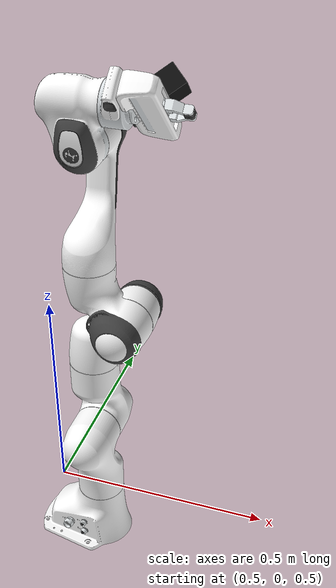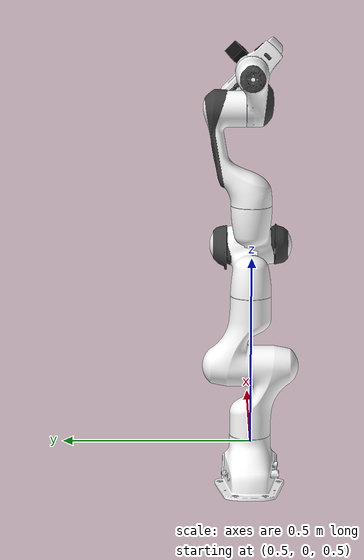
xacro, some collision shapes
<?xml version="1.0"?>
<robot name="panda" xmlns:xacro="http://www.ros.org/wiki/xacro">

  <xacro:include filename="$(find panda_description)/urdf/materials.xacro" />
  <xacro:include filename="$(find panda_description)/urdf/arm.xacro" />
  <xacro:include filename="$(find panda_description)/urdf/sensors.xacro" />
  <xacro:include filename="$(find panda_description)/urdf/gazebo.xacro" />
  <xacro:include filename="$(find panda_description)/urdf/ros2control.xacro" />
  <xacro:base_camera parent_link="panda_hand"/>

</robot>

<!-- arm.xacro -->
<robot name="panda" xmlns:xacro="http://www.ros.org/wiki/xacro">

  <!-- World Frame -->
  <link name="world"/>
  <link name  ="tcp_link"/>

  <!-- Link 0 - Base -->
  <link name="panda_link0">
    <visual>
      <geometry>
        <mesh filename="package://panda_description/meshes/visual/link0.dae"/>
      </geometry>
    </visual>
    <collision>
      <geometry>
        <mesh filename="package://panda_description/meshes/collision/link0.obj"/>
      </geometry>
    </collision>
      <inertial>
          <origin xyz="0 0 0" rpy="0.0 0.0 0.0"/>
          <mass value="0.1"/>
          <inertia ixx="0.1" ixy="0.0" ixz="0.0" iyy="0.1" iyz="0.0" izz="0.1"/>
      </inertial>
  </link>

  <!-- World-Base Joint  rpy="0 0 1.57 -->
  <joint name="virtual_joint" type="fixed">
    <parent link="world"/>
    <child link="panda_link0"/>
    <origin xyz="0.6 0 0.35" rpy="0 0 0"/>
  </joint>

  <!-- Link 1 -->
  <link name="panda_link1">
    <visual>
      <geometry>
        <mesh filename="package://panda_description/meshes/visual/link1.dae"/>
      </geometry>
    </visual>
    <collision>
      <geometry>
        <mesh filename="package://panda_description/meshes/collision/link1.obj"/>
      </geometry>
    </collision>
        <inertial>
            <origin xyz="0 0 0" rpy="0.0 0.0 0.0"/>
            <mass value="0.1"/>
            <inertia ixx="0.1" ixy="0.0" ixz="0.0" iyy="0.1" iyz="0.0" izz="0.1"/>
        </inertial>
  </link>

  <!-- Joint 1 -->
  <joint name="panda_joint1" type="revolute">
    <safety_controller k_position="100.0" k_velocity="40.0" soft_lower_limit="-2.8973" soft_upper_limit="2.8973"/>
    <origin rpy="0 0 0" xyz="0 0 0.333"/>
    <parent link="panda_link0"/>
    <child link="panda_link1"/>
    <axis xyz="0 0 1"/>
    <limit effort="30.0" lower="-2.9671" upper="2.9671" velocity="10.0"/>
  </joint>

  <!-- Link 2 -->
  <link name="panda_link2">
    <visual>
      <geometry>
        <mesh filename="package://panda_description/meshes/visual/link2.dae"/>
      </geometry>
    </visual>
    <collision>
      <geometry>
        <mesh filename="package://panda_description/meshes/collision/link2.obj"/>
      </geometry>
    </collision>
        <inertial>
          <origin xyz="0 0 0" rpy="0.0 0.0 0.0"/>
          <mass value="0.1"/>
          <inertia ixx="0.1" ixy="0.0" ixz="0.0" iyy="0.1" iyz="0.0" izz="0.1"/>
      </inertial>
  </link>

  <!-- Joint 2 -->
  <joint name="panda_joint2" type="revolute">
    <safety_controller k_position="100.0" k_velocity="40.0" soft_lower_limit="-1.7628" soft_upper_limit="1.7628"/>
    <origin rpy="-1.57079632679 0 0" xyz="0 0 0"/>
    <parent link="panda_link1"/>
    <child link="panda_link2"/>
    <axis xyz="0 0 1"/>
    <limit effort="30.0" lower="-1.8326" upper="1.8326" velocity="10.0"/>
  </joint>

  <!-- Link 3 -->
  <link name="panda_link3">
    <visual>
      <geometry>
        <mesh filename="package://panda_description/meshes/visual/link3.dae"/>
      </geometry>
    </visual>
    <collision>
      <geometry>
        <mesh filename="package://panda_description/meshes/collision/link3.obj"/>
      </geometry>
    </collision>
      <inertial>
          <origin xyz="0 0 0" rpy="0.0 0.0 0.0"/>
          <mass value="0.1"/>
          <inertia ixx="0.1" ixy="0.0" ixz="0.0" iyy="0.1" iyz="0.0" izz="0.1"/>
      </inertial>
  </link>

  <!-- Joint 3 -->
  <joint name="panda_joint3" type="revolute">
    <safety_controller k_position="100.0" k_velocity="40.0" soft_lower_limit="-2.8973" soft_upper_limit="2.8973"/>
    <origin rpy="1.57079632679 0 0" xyz="0 -0.316 0"/>
    <parent link="panda_link2"/>
    <child link="panda_link3"/>
    <axis xyz="0 0 1"/>
    <limit effort="30.0" lower="-2.9671" upper="2.9671" velocity="10.0"/>
  </joint>

  <!-- Link 4 -->
  <link name="panda_link4">
    <visual>
      <geometry>
        <mesh filename="package://panda_description/meshes/visual/link4.dae"/>
      </geometry>
    </visual>
    <collision>
      <geometry>
        <mesh filename="package://panda_description/meshes/collision/link4.obj"/>
      </geometry>
    </collision>
      <inertial>
          <origin xyz="0 0 0" rpy="0.0 0.0 0.0"/>
          <mass value="0.1"/>
          <inertia ixx="0.1" ixy="0.0" ixz="0.0" iyy="0.1" iyz="0.0" izz="0.1"/>
      </inertial>
  </link>

  <!-- Joint 4 -->
  <joint name="panda_joint4" type="revolute">
    <safety_controller k_position="100.0" k_velocity="40.0" soft_lower_limit="-3.0718" soft_upper_limit="-0.0698"/>
    <origin rpy="1.57079632679 0 0" xyz="0.0825 0 0"/>
    <parent link="panda_link3"/>
    <child link="panda_link4"/>
    <axis xyz="0 0 1"/>
    <limit effort="30.0" lower="-3.1416" upper="0.0" velocity="10.0"/>
  </joint>

  <!-- Link 5 -->
  <link name="panda_link5">
    <visual>
      <geometry>
        <mesh filename="package://panda_description/meshes/visual/link5.dae"/>
      </geometry>
    </visual>
    <collision>
      <geometry>
        <mesh filename="package://panda_description/meshes/collision/link5.obj"/>
      </geometry>
    </collision>
      <inertial>
          <origin xyz="0 0 0" rpy="0.0 0.0 0.0"/>
          <mass value="0.1"/>
          <inertia ixx="0.1" ixy="0.0" ixz="0.0" iyy="0.1" iyz="0.0" izz="0.1"/>
      </inertial>
  </link>

  <!-- Joint 5 -->
  <joint name="panda_joint5" type="revolute">
    <safety_controller k_position="100.0" k_velocity="40.0" soft_lower_limit="-2.8973" soft_upper_limit="2.8973"/>
    <origin rpy="-1.57079632679 0 0" xyz="-0.0825 0.384 0"/>
    <parent link="panda_link4"/>
    <child link="panda_link5"/>
    <axis xyz="0 0 1"/>
    <limit effort="30.0" lower="-2.9671" upper="2.9671" velocity="10.0"/>
  </joint>

  <!-- Link 6 -->
  <link name="panda_link6">
    <visual>
      <geometry>
        <mesh filename="package://panda_description/meshes/visual/link6.dae"/>
      </geometry>
    </visual>
    <collision>
      <geometry>
        <mesh filename="package://panda_description/meshes/collision/link6.obj"/>
      </geometry>
    </collision>
      <inertial>
          <origin xyz="0 0 0" rpy="0.0 0.0 0.0"/>
          <mass value="0.1"/>
          <inertia ixx="0.1" ixy="0.0" ixz="0.0" iyy="0.1" iyz="0.0" izz="0.1"/>
      </inertial>
  </link>

  <!-- Joint 6 45 deg = 57079632679-->
  <joint name="panda_joint6" type="revolute">
    <safety_controller k_position="100.0" k_velocity="40.0" soft_lower_limit="-1.57079632679" soft_upper_limit="3.141562"/>
    <origin rpy="1.57079632679 -1.57079632679 0 " xyz="0 0 0"/>
    <parent link="panda_link5"/>
    <child link="panda_link6"/>
    <axis xyz="0 0 1"/>
    <limit effort="30.0" lower="-1.1873" upper="3.8223" velocity="10.0"/>
  </joint>

  <!-- Link 7 -->
  <link name="panda_link7">
    <visual>
      <geometry>
        <mesh filename="package://panda_description/meshes/visual/link7.dae"/>
      </geometry>
    </visual>
    <collision>
      <geometry>
        <mesh filename="package://panda_description/meshes/collision/link7.obj"/>
      </geometry>
    </collision>
      <inertial>
          <origin xyz="0 0 0" rpy="0.0 0.0 0.0"/>
          <mass value="0.1"/>
          <inertia ixx="0.1" ixy="0.0" ixz="0.0" iyy="0.1" iyz="0.0" izz="0.1"/>
      </inertial>
  </link>

  <!-- Joint 7 -->
  <joint name="panda_joint7" type="revolute">
    <safety_controller k_position="100.0" k_velocity="40.0" soft_lower_limit="-2.8973" soft_upper_limit="2.8973"/>
    <origin rpy="1.57079632679 0 0" xyz="0.088 0 0"/>
    <parent link="panda_link6"/>
    <child link="panda_link7"/>
    <axis xyz="0 0 1"/>
    <limit effort="30.0" lower="-2.9671" upper="2.9671" velocity="10.0"/>
  </joint>
  <!-- tcp_joint -->
    <joint    name  ="tcp_joint"             type      ="fixed">
    <origin xyz   ="0 0 0.08"              rpy       ="0 0 0"/>
    <parent link  ="panda_hand"/>
    <child  link  ="tcp_link"/>
  </joint>

  <!-- Hand Link -->
  <link name="panda_hand">
    <visual>
      <geometry>
        <mesh filename="package://panda_description/meshes/visual/hand.dae"/>
      </geometry>
    </visual>
    <collision>
      <geometry>
        <mesh filename="package://panda_description/meshes/collision/hand.obj"/>
      </geometry>
    </collision>
      <inertial>
          <origin xyz="0 0 0" rpy="0.0 0.0 0.0"/>
          <mass value="0.1"/>
          <inertia ixx="0.1" ixy="0.0" ixz="0.0" iyy="0.1" iyz="0.0" izz="0.1"/>
      </inertial>
  </link>

  <!-- Hand Joint rpy="0 0 -0.785398163397 -->
  <joint name="panda_hand_joint" type="fixed">
    <parent link="panda_link7"/>
    <child link="panda_hand"/>
    <origin rpy="0 0 -0.785398163397" xyz="0 0 0.106"/>
  </joint>

  <!-- Left Finger Link -->
  <link name="panda_leftfinger">
    <visual>
      <geometry>
        <mesh filename="package://panda_description/meshes/visual/finger.dae"/>
      </geometry>
    </visual>
    <collision>
      <geometry>
        <mesh filename="package://panda_description/meshes/collision/finger.obj"/>
      </geometry>
    </collision>
      <inertial>
          <origin xyz="0 0 0" rpy="0.0 0.0 0.0"/>
          <mass value="0.1"/>
          <inertia ixx="0.1" ixy="0.0" ixz="0.0" iyy="0.1" iyz="0.0" izz="0.1"/>
      </inertial>
  </link>

  <!-- Right Finger Link -->
  <link name="panda_rightfinger">
    <visual>
      <origin rpy="0 0 3.14159265359" xyz="0 0 0"/>
      <geometry>
        <mesh filename="package://panda_description/meshes/visual/finger.dae"/>
      </geometry>
    </visual>
    <collision>
      <origin rpy="0 0 3.14159265359" xyz="0 0 0"/>
      <geometry>
        <mesh filename="package://panda_description/meshes/collision/finger.obj"/>
      </geometry>
    </collision>
      <inertial>
          <origin xyz="0 0 0" rpy="0.0 0.0 0.0"/>
          <mass value="0.1"/>
          <inertia ixx="0.1" ixy="0.0" ixz="0.0" iyy="0.1" iyz="0.0" izz="0.1"/>
      </inertial>
  </link>

  <!-- Finger Joint 1 -->
  <joint name="panda_finger_joint1" type="prismatic">
    <parent link="panda_hand"/>
    <child link="panda_leftfinger"/>
    <origin rpy="0 0 0" xyz="0 0 0.0584"/>
    <axis xyz="0 1 0"/>
    <limit effort="30.0" lower="0.0" upper="0.04" velocity="10.0"/>
  </joint>

  <!-- Finger Joint 2 -->
  <joint name="panda_finger_joint2" type="prismatic">
    <parent link="panda_hand"/>
    <child link="panda_rightfinger"/>
    <origin rpy="0 0 0" xyz="0 0 0.0584"/>
    <axis xyz="0 -1 0"/>
    <limit effort="30.0" lower="0.0" upper="0.04" velocity="10.0"/>
  </joint>

</robot>

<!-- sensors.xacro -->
<robot xmlns:xacro="http://www.ros.org/wiki/xacro">

    <xacro:macro name="base_camera"
                params="parent_link
                        base_link:=camera_link
                        camera_name:=camera
                        frame_name:=frame">

      <link name="${base_link}">
        <inertial>
          <origin xyz="0 0 0" rpy="0 0 0"/>
          <mass value="0.1"/>
          <inertia ixx="0.0001" ixy="0" ixz="0"
                  iyy="0.0001" iyz="0"
                  izz="0.0001"/>
        </inertial>

        <visual>
          <origin xyz="0 0 0" rpy="0 0 0"/>
          <geometry>
            <mesh filename="package://panda_description/meshes/visual/astra_cam.stl"
                  scale="1 1 1"/>
          </geometry>
          <material name="black">
            <color rgba="0.05 0.05 0.05 1.0"/>
          </material>
        </visual>

        <collision>
          <origin xyz="0 0 0" rpy="0 0 0"/>
          <geometry>
            <box size="0.05 0.04 0.04"/>
          </geometry>
        </collision>
      </link>

      <link name="${base_link}_optical"/>

      <joint name="${base_link}_joint" type="fixed">
        <parent link="${parent_link}"/>
        <child link="${base_link}"/>
        <origin xyz="0.05 0.0 0.06" rpy="0 0.785 0"/>
      </joint>

      <joint name="${base_link}_optical_joint" type="fixed">
        <parent link="${base_link}"/>
        <child link="${base_link}_optical"/>
        <origin xyz="0 0 0" rpy="${-pi/2} 0 ${-pi/2}"/>
      </joint>

      <gazebo reference="${base_link}">
        <sensor name="astra_rgb" type="camera">
          <pose>0 0 0 0 0 0</pose>
          <always_on>true</always_on>
          <update_rate>30</update_rate>
          <visualize>true</visualize>
          <topic>/astra/rgb/image_raw</topic>
          <gz_frame_id>${base_link}_optical</gz_frame_id>
          <camera>
            <image>
              <width>640</width>
              <height>480</height>
              <format>R8G8B8</format>
            </image>
            <clip>
              <near>0.05</near>
              <far>8.0</far>
            </clip>
          </camera>
        </sensor>
      </gazebo>

      <gazebo reference="${base_link}">
        <sensor name="astra_depth" type="depth">
          <pose>0 0 0 0 0 0</pose>
          <always_on>true</always_on>
          <update_rate>30</update_rate>
          <visualize>true</visualize>
          <topic>/astra/depth/image_raw</topic>
          <gz_frame_id>${base_link}_optical</gz_frame_id>
          <camera>
            <image>
              <width>640</width>
              <height>480</height>
            </image>
            <clip>
              <near>0.05</near>
              <far>8.0</far>
            </clip>
          </camera>
        </sensor>
      </gazebo>

    </xacro:macro>
</robot>
